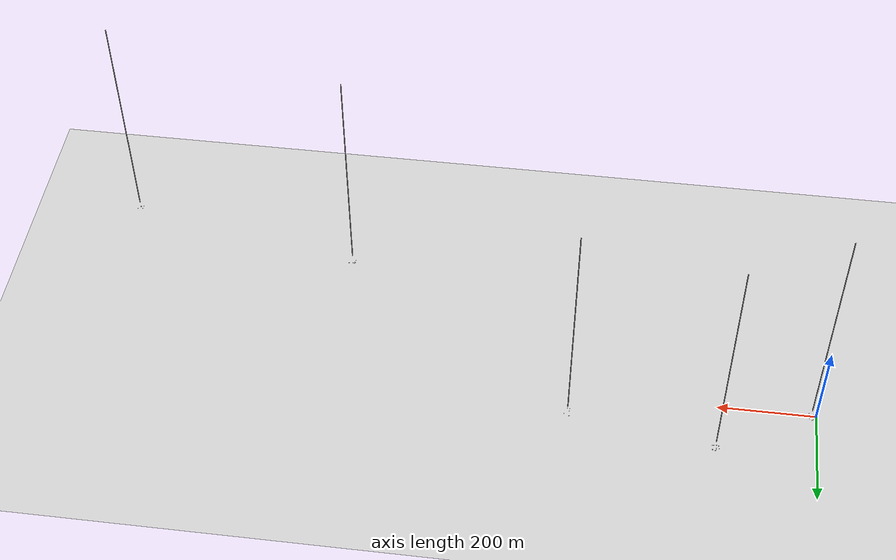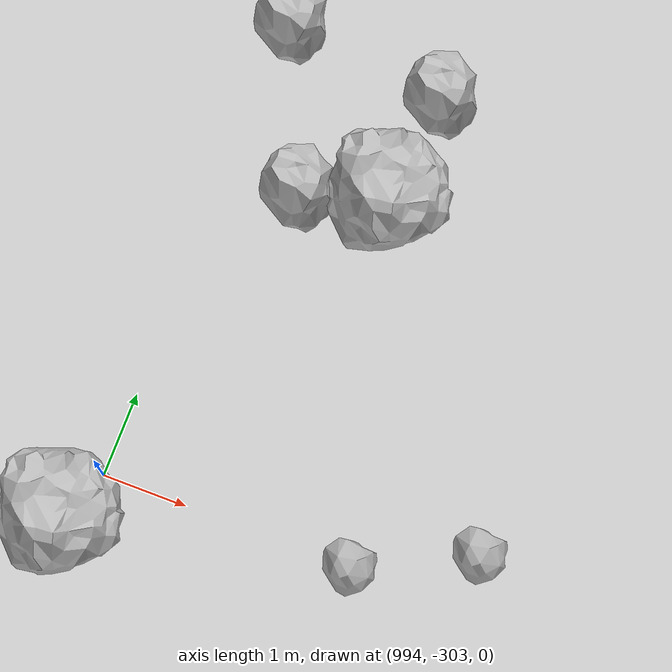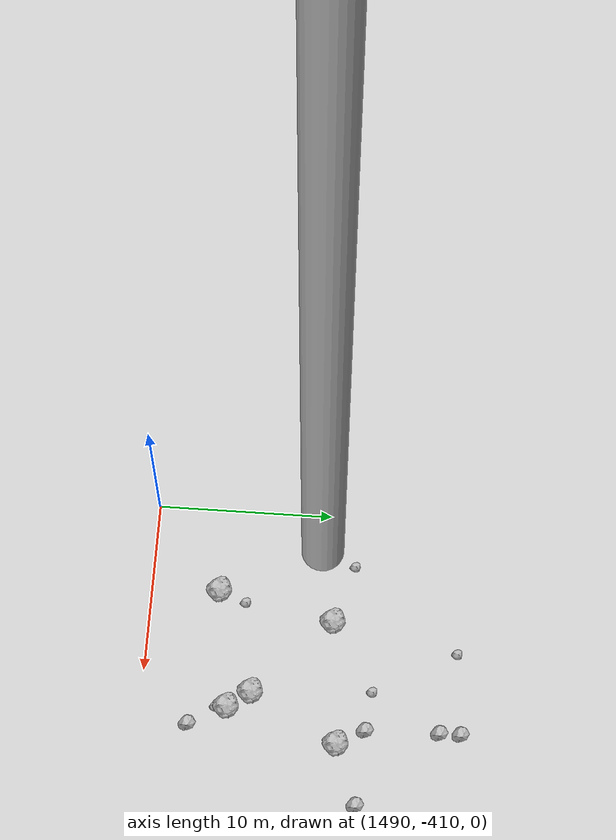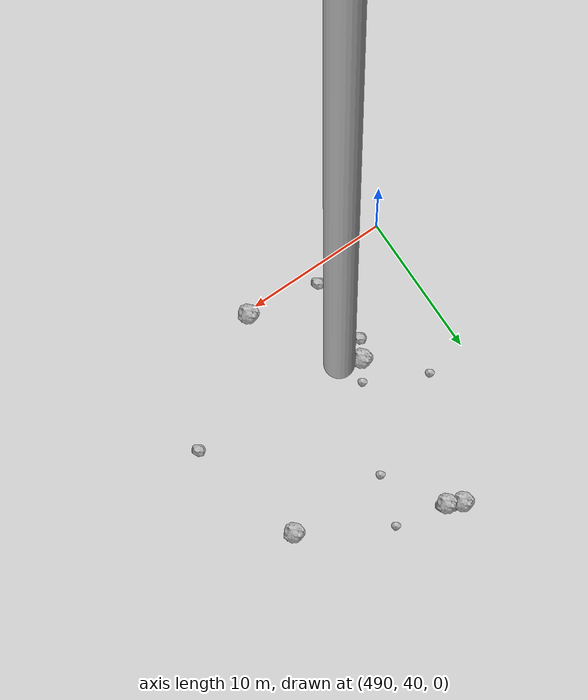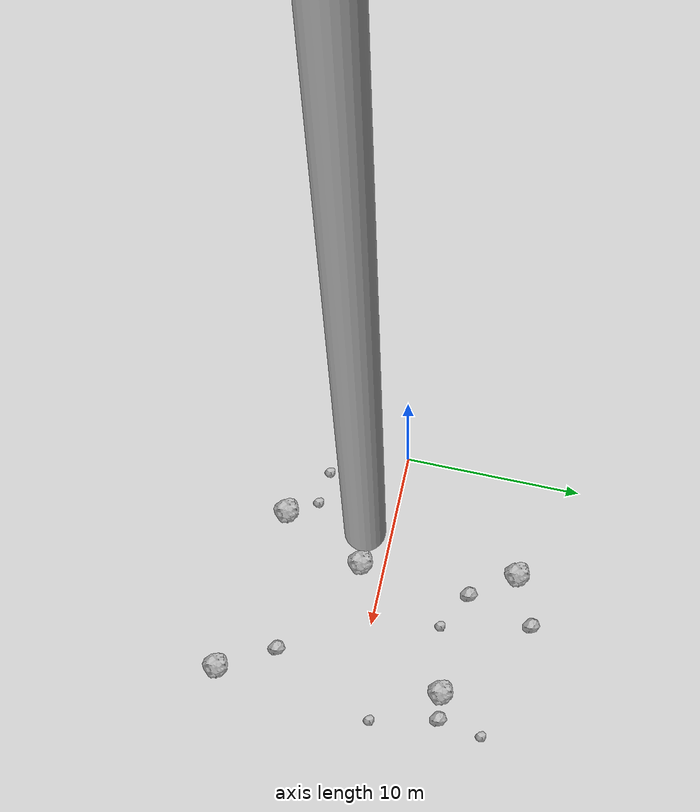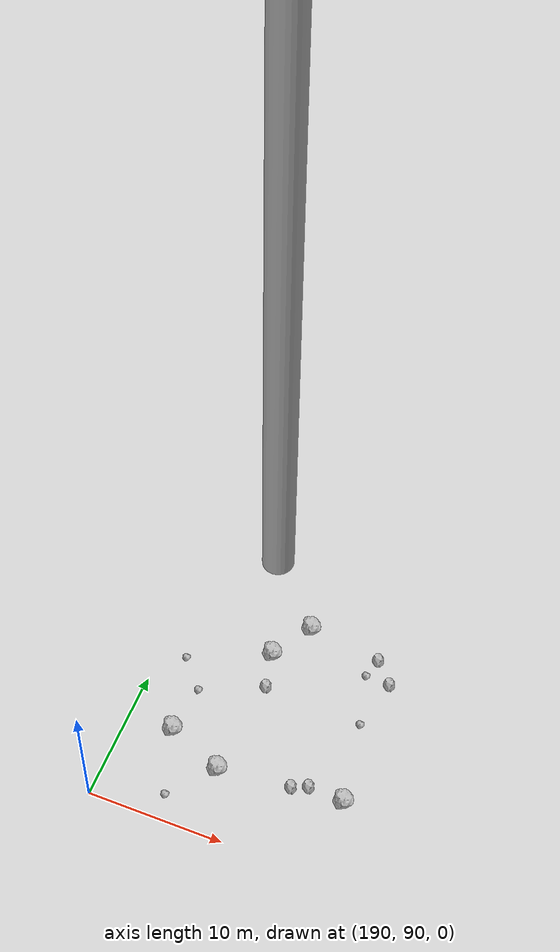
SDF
<?xml version="1.0" ?>
<sdf version="1.6">
  <world name="default">

    <include>
      <uri>model://custom_ground</uri>
    </include>

    <include>
      <uri>model://sun</uri>
    </include>

    <spherical_coordinates>
      <surface_model>EARTH_WGS84</surface_model>
      <latitude_deg>38.161479</latitude_deg>
      <longitude_deg>-122.454630</longitude_deg>
      <elevation>488.0</elevation>
      <heading_deg>90</heading_deg>
    </spherical_coordinates>

    <model name="rock1_0_0">
      <include>
        <uri>model://rock1</uri>
        <pose>14.268658401103568 -8.05244208059345 0.5 0 0 0</pose>
      </include>
    </model>
    <model name="rock1_0_1">
      <include>
        <uri>model://rock1</uri>
        <pose>13.145670562018372 4.631143264597677 0.5 0 0 0</pose>
      </include>
    </model>
    <model name="rock1_0_2">
      <include>
        <uri>model://rock1</uri>
        <pose>5.588244560397017 7.502242841563703 0.5 0 0 0</pose>
      </include>
    </model>
    <model name="rock1_0_3">
      <include>
        <uri>model://rock1</uri>
        <pose>4.632453958096676 -6.154039830444187 0.5 0 0 0</pose>
      </include>
    </model>
    <model name="rock1_0_4">
      <include>
        <uri>model://rock1</uri>
        <pose>6.738055242732162 -1.3622576790118845 0.5 0 0 0</pose>
      </include>
    </model>
    <model name="rock2_0_0">
      <include>
        <uri>model://rock2</uri>
        <pose>7.218095011370236 5.06467056744572 0.3 0 0 0</pose>
      </include>
    </model>
    <model name="rock2_0_1">
      <include>
        <uri>model://rock2</uri>
        <pose>12.84196889078743 4.793536601767194 0.3 0 0 0</pose>
      </include>
    </model>
    <model name="rock2_0_2">
      <include>
        <uri>model://rock2</uri>
        <pose>14.578902233676471 4.819384331202803 0.3 0 0 0</pose>
      </include>
    </model>
    <model name="rock2_0_3">
      <include>
        <uri>model://rock2</uri>
        <pose>8.273340291700283 8.877458873999686 0.3 0 0 0</pose>
      </include>
    </model>
    <model name="rock2_0_4">
      <include>
        <uri>model://rock2</uri>
        <pose>12.49628436231782 -4.92503912897792 0.3 0 0 0</pose>
      </include>
    </model>
    <model name="rock3_0_0">
      <include>
        <uri>model://rock3</uri>
        <pose>9.326132564346954 3.8170865580328055 0.2 0 0 0</pose>
      </include>
    </model>
    <model name="rock3_0_1">
      <include>
        <uri>model://rock3</uri>
        <pose>15.034414925119876 7.323070878949853 0.2 0 0 0</pose>
      </include>
    </model>
    <model name="rock3_0_2">
      <include>
        <uri>model://rock3</uri>
        <pose>1.7540757227802173 -4.245137870542218 0.2 0 0 0</pose>
      </include>
    </model>
    <model name="rock3_0_3">
      <include>
        <uri>model://rock3</uri>
        <pose>3.660513580736471 -4.491158326242188 0.2 0 0 0</pose>
      </include>
    </model>
    <model name="rock3_0_4">
      <include>
        <uri>model://rock3</uri>
        <pose>15.43166781376603 1.0089852199751483 0.2 0 0 0</pose>
      </include>
    </model>
    <model name="rock1_1_0">
      <include>
        <uri>model://rock1</uri>
        <pose>197.5816527643921 95.0239168826244 0.5 0 0 0</pose>
      </include>
    </model>
    <model name="rock1_1_1">
      <include>
        <uri>model://rock1</uri>
        <pose>206.69946759780495 95.92786054555343 0.5 0 0 0</pose>
      </include>
    </model>
    <model name="rock1_1_2">
      <include>
        <uri>model://rock1</uri>
        <pose>199.55589720205404 108.45131785014709 0.5 0 0 0</pose>
      </include>
    </model>
    <model name="rock1_1_3">
      <include>
        <uri>model://rock1</uri>
        <pose>193.3817016827467 96.78352575571874 0.5 0 0 0</pose>
      </include>
    </model>
    <model name="rock1_1_4">
      <include>
        <uri>model://rock1</uri>
        <pose>197.66852310961644 105.30701904332898 0.5 0 0 0</pose>
      </include>
    </model>
    <model name="rock2_1_0">
      <include>
        <uri>model://rock2</uri>
        <pose>198.26540803004613 102.53229289679726 0.3 0 0 0</pose>
      </include>
    </model>
    <model name="rock2_1_1">
      <include>
        <uri>model://rock2</uri>
        <pose>205.11056976412252 107.68554986558719 0.3 0 0 0</pose>
      </include>
    </model>
    <model name="rock2_1_2">
      <include>
        <uri>model://rock2</uri>
        <pose>204.04607099831952 96.09904560394382 0.3 0 0 0</pose>
      </include>
    </model>
    <model name="rock2_1_3">
      <include>
        <uri>model://rock2</uri>
        <pose>206.54485771567778 106.02155048440525 0.3 0 0 0</pose>
      </include>
    </model>
    <model name="rock2_1_4">
      <include>
        <uri>model://rock2</uri>
        <pose>202.90813480265112 95.6108191994657 0.3 0 0 0</pose>
      </include>
    </model>
    <model name="rock3_1_0">
      <include>
        <uri>model://rock3</uri>
        <pose>204.70055559350988 106.10494240070147 0.2 0 0 0</pose>
      </include>
    </model>
    <model name="rock3_1_1">
      <include>
        <uri>model://rock3</uri>
        <pose>193.7860551136742 100.432539357126 0.2 0 0 0</pose>
      </include>
    </model>
    <model name="rock3_1_2">
      <include>
        <uri>model://rock3</uri>
        <pose>205.67192943712192 102.11403137248125 0.2 0 0 0</pose>
      </include>
    </model>
    <model name="rock3_1_3">
      <include>
        <uri>model://rock3</uri>
        <pose>194.95375651484812 91.82275585038089 0.2 0 0 0</pose>
      </include>
    </model>
    <model name="rock3_1_4">
      <include>
        <uri>model://rock3</uri>
        <pose>191.88915555318863 102.65745242269969 0.2 0 0 0</pose>
      </include>
    </model>
    <model name="rock1_2_0">
      <include>
        <uri>model://rock1</uri>
        <pose>496.1183728919656 47.092101524985495 0.5 0 0 0</pose>
      </include>
    </model>
    <model name="rock1_2_1">
      <include>
        <uri>model://rock1</uri>
        <pose>497.02597133177187 58.52364483963314 0.5 0 0 0</pose>
      </include>
    </model>
    <model name="rock1_2_2">
      <include>
        <uri>model://rock1</uri>
        <pose>500.7281590051683 40.233112107205415 0.5 0 0 0</pose>
      </include>
    </model>
    <model name="rock1_2_3">
      <include>
        <uri>model://rock1</uri>
        <pose>506.6085311279401 54.39731663400037 0.5 0 0 0</pose>
      </include>
    </model>
    <model name="rock1_2_4">
      <include>
        <uri>model://rock1</uri>
        <pose>496.04567812301985 59.030944190984286 0.5 0 0 0</pose>
      </include>
    </model>
    <model name="rock2_2_0">
      <include>
        <uri>model://rock2</uri>
        <pose>496.83188731277585 58.777572415277874 0.3 0 0 0</pose>
      </include>
    </model>
    <model name="rock2_2_1">
      <include>
        <uri>model://rock2</uri>
        <pose>497.34978712773557 58.47370886660998 0.3 0 0 0</pose>
      </include>
    </model>
    <model name="rock2_2_2">
      <include>
        <uri>model://rock2</uri>
        <pose>495.3980744453585 45.833230815194376 0.3 0 0 0</pose>
      </include>
    </model>
    <model name="rock2_2_3">
      <include>
        <uri>model://rock2</uri>
        <pose>508.71263089048256 46.12890872367063 0.3 0 0 0</pose>
      </include>
    </model>
    <model name="rock2_2_4">
      <include>
        <uri>model://rock2</uri>
        <pose>495.5880843258729 41.08872223889075 0.3 0 0 0</pose>
      </include>
    </model>
    <model name="rock3_2_0">
      <include>
        <uri>model://rock3</uri>
        <pose>496.94345321795 48.400756049205015 0.2 0 0 0</pose>
      </include>
    </model>
    <model name="rock3_2_1">
      <include>
        <uri>model://rock3</uri>
        <pose>499.53261012226557 54.33837557763647 0.2 0 0 0</pose>
      </include>
    </model>
    <model name="rock3_2_2">
      <include>
        <uri>model://rock3</uri>
        <pose>492.8246474588366 50.42930269931496 0.2 0 0 0</pose>
      </include>
    </model>
    <model name="rock3_2_3">
      <include>
        <uri>model://rock3</uri>
        <pose>495.37507902036003 43.11022876599689 0.2 0 0 0</pose>
      </include>
    </model>
    <model name="rock3_2_4">
      <include>
        <uri>model://rock3</uri>
        <pose>500.64507672940493 57.797399104649614 0.2 0 0 0</pose>
      </include>
    </model>
    <model name="rock1_3_0">
      <include>
        <uri>model://rock1</uri>
        <pose>993.7848518321083 -303.6161932107398 0.5 0 0 0</pose>
      </include>
    </model>
    <model name="rock1_3_1">
      <include>
        <uri>model://rock1</uri>
        <pose>996.0555750487348 -294.9707367459548 0.5 0 0 0</pose>
      </include>
    </model>
    <model name="rock1_3_2">
      <include>
        <uri>model://rock1</uri>
        <pose>999.6118433950372 -296.675383051541 0.5 0 0 0</pose>
      </include>
    </model>
    <model name="rock1_3_3">
      <include>
        <uri>model://rock1</uri>
        <pose>995.9092250424106 -298.8481436685183 0.5 0 0 0</pose>
      </include>
    </model>
    <model name="rock1_3_4">
      <include>
        <uri>model://rock1</uri>
        <pose>1007.3499373136839 -295.26941145320814 0.5 0 0 0</pose>
      </include>
    </model>
    <model name="rock2_3_0">
      <include>
        <uri>model://rock2</uri>
        <pose>996.4189105083866 -294.20780779705774 0.3 0 0 0</pose>
      </include>
    </model>
    <model name="rock2_3_1">
      <include>
        <uri>model://rock2</uri>
        <pose>994.8670262896854 -299.0845468150904 0.3 0 0 0</pose>
      </include>
    </model>
    <model name="rock2_3_2">
      <include>
        <uri>model://rock2</uri>
        <pose>1004.234815021728 -306.47627933288936 0.3 0 0 0</pose>
      </include>
    </model>
    <model name="rock2_3_3">
      <include>
        <uri>model://rock2</uri>
        <pose>996.032255628622 -297.43554075957275 0.3 0 0 0</pose>
      </include>
    </model>
    <model name="rock2_3_4">
      <include>
        <uri>model://rock2</uri>
        <pose>994.0594543980661 -297.19719696274393 0.3 0 0 0</pose>
      </include>
    </model>
    <model name="rock3_3_0">
      <include>
        <uri>model://rock3</uri>
        <pose>996.3984460786539 -291.56506158793815 0.2 0 0 0</pose>
      </include>
    </model>
    <model name="rock3_3_1">
      <include>
        <uri>model://rock3</uri>
        <pose>996.9786114524924 -303.0146473689888 0.2 0 0 0</pose>
      </include>
    </model>
    <model name="rock3_3_2">
      <include>
        <uri>model://rock3</uri>
        <pose>998.3033443266454 -302.3709785416529 0.2 0 0 0</pose>
      </include>
    </model>
    <model name="rock3_3_3">
      <include>
        <uri>model://rock3</uri>
        <pose>996.2389037303019 -294.7460503666427 0.2 0 0 0</pose>
      </include>
    </model>
    <model name="rock3_3_4">
      <include>
        <uri>model://rock3</uri>
        <pose>1004.3129617181422 -300.1294761365109 0.2 0 0 0</pose>
      </include>
    </model>
    <model name="rock1_4_0">
      <include>
        <uri>model://rock1</uri>
        <pose>1496.5787036915704 -399.5713861311955 0.5 0 0 0</pose>
      </include>
    </model>
    <model name="rock1_4_1">
      <include>
        <uri>model://rock1</uri>
        <pose>1501.9604278358408 -405.1997094709079 0.5 0 0 0</pose>
      </include>
    </model>
    <model name="rock1_4_2">
      <include>
        <uri>model://rock1</uri>
        <pose>1495.1182090015266 -406.1436638501079 0.5 0 0 0</pose>
      </include>
    </model>
    <model name="rock1_4_3">
      <include>
        <uri>model://rock1</uri>
        <pose>1501.0067445940692 -403.9169226891019 0.5 0 0 0</pose>
      </include>
    </model>
    <model name="rock1_4_4">
      <include>
        <uri>model://rock1</uri>
        <pose>1503.7104304016732 -398.9689668753848 0.5 0 0 0</pose>
      </include>
    </model>
    <model name="rock2_4_0">
      <include>
        <uri>model://rock2</uri>
        <pose>1502.6434506995986 -392.0510624449491 0.3 0 0 0</pose>
      </include>
    </model>
    <model name="rock2_4_1">
      <include>
        <uri>model://rock2</uri>
        <pose>1507.0321098415181 -397.66461571147426 0.3 0 0 0</pose>
      </include>
    </model>
    <model name="rock2_4_2">
      <include>
        <uri>model://rock2</uri>
        <pose>1502.6463166962642 -393.23589781860375 0.3 0 0 0</pose>
      </include>
    </model>
    <model name="rock2_4_3">
      <include>
        <uri>model://rock2</uri>
        <pose>1502.991754570108 -407.26703224827105 0.3 0 0 0</pose>
      </include>
    </model>
    <model name="rock2_4_4">
      <include>
        <uri>model://rock2</uri>
        <pose>1502.7557099289752 -397.36930164557526 0.3 0 0 0</pose>
      </include>
    </model>
    <model name="rock3_4_0">
      <include>
        <uri>model://rock3</uri>
        <pose>1497.9460931016852 -392.45673091719385 0.2 0 0 0</pose>
      </include>
    </model>
    <model name="rock3_4_1">
      <include>
        <uri>model://rock3</uri>
        <pose>1495.6515831046686 -404.603328782227 0.2 0 0 0</pose>
      </include>
    </model>
    <model name="rock3_4_2">
      <include>
        <uri>model://rock3</uri>
        <pose>1493.0677730707503 -398.49767560125986 0.2 0 0 0</pose>
      </include>
    </model>
    <model name="rock3_4_3">
      <include>
        <uri>model://rock3</uri>
        <pose>1500.4905163072506 -397.12426616876024 0.2 0 0 0</pose>
      </include>
    </model>
    <model name="rock3_4_4">
      <include>
        <uri>model://rock3</uri>
        <pose>1501.898577251328 -405.82721036820806 0.2 0 0 0</pose>
      </include>
    </model>

    <model name="cylinder_1">
      <static>true</static>
      <link name="link">
        <visual name="visual">
          <geometry>
            <cylinder>
              <radius>1</radius>
              <length>500</length>
            </cylinder>
          </geometry>
        </visual>
      </link>
      <pose>10 0 270 0 0 0</pose>
    </model>

    <model name="cylinder_2">
      <static>true</static>
      <link name="link">
        <visual name="visual">
          <geometry>
            <cylinder>
              <radius>1</radius>
              <length>500</length>
            </cylinder>
          </geometry>
        </visual>
      </link>
      <pose>200 100 270 0 0 0</pose>
    </model>

    <model name="cylinder_3">
      <static>true</static>
      <link name="link">
        <visual name="visual">
          <geometry>
            <cylinder>
              <radius>1</radius>
              <length>500</length>
            </cylinder>
          </geometry>
        </visual>
      </link>
      <pose>500 50 270 0 0 0</pose>
    </model>

    <model name="cylinder_4">
      <static>true</static>
      <link name="link">
        <visual name="visual">
          <geometry>
            <cylinder>
              <radius>1</radius>
              <length>500</length>
            </cylinder>
          </geometry>
        </visual>
      </link>
      <pose>1000 -300 270 0 0 0</pose>
    </model>

    <model name="cylinder_5">
      <static>true</static>
      <link name="link">
        <visual name="visual">
          <geometry>
            <cylinder>
              <radius>1</radius>
              <length>500</length>
            </cylinder>
          </geometry>
        </visual>
      </link>
      <pose>1500 -400 270 0 0 0</pose>
    </model>

  </world>
</sdf>

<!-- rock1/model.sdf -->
<sdf version="1.6">
  <model name="rock1">
    <static>true</static> <!-- Set to true if the model should not move -->
    <pose>0 0 0 0 0 0</pose>

    <!--z offset is 0.5 for full scale-->

    <link name="link">
      <collision name="rock1_collision">
        <geometry>
          <mesh>
            <uri>model://meshes/rock1.dae</uri>
          </mesh>
        </geometry>
      </collision>
      <visual name="rock1_visual">
        <geometry>
          <mesh>
            <uri>model://meshes/rock1.dae</uri>
          </mesh>
        </geometry>
        <material>
          <script>
            <uri>model://materials/scripts/sand_pebbles.material</uri>
            <name>custom_ground/Image</name>
          </script>
        </material>
      </visual>
    </link>
  </model>
</sdf>

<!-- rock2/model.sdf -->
<sdf version="1.6">
  <model name="rock2">
    <static>true</static> <!-- Set to true if the model should not move -->
    <pose>0 0 0 0 0 0</pose>

    <!--z offset is 0.3 for full scale-->

    <link name="link">
      <collision name="rock2_collision">
        <geometry>
          <mesh>
            <uri>model://meshes/rock2.dae</uri>
          </mesh>
        </geometry>
      </collision>
      <visual name="rock2_visual">
        <geometry>
          <mesh>
            <uri>model://meshes/rock2.dae</uri>
          </mesh>
        </geometry>
        <material>
          <script>
            <uri>model://materials/scripts/sand_pebbles.material</uri>
            <name>custom_ground/Image</name>
          </script>
        </material>
      </visual>
    </link>
  </model>
</sdf>

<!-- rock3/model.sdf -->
<sdf version="1.6">
  <model name="rock3">
    <static>true</static> <!-- Set to true if the model should not move -->
    <pose>0 0 0 0 0 0</pose>

    <!--z offset is 0.2 for full scale-->

    <link name="link">
      <collision name="rock3_collision">
        <geometry>
          <mesh>
            <uri>model://meshes/rock3.dae</uri>
          </mesh>
        </geometry>
      </collision>
      <visual name="rock3_visual">
        <geometry>
          <mesh>
            <uri>model://meshes/rock3.dae</uri>
          </mesh>
        </geometry>
        <material>
          <script>
            <uri>model://materials/scripts/sand_pebbles.material</uri>
            <name>custom_ground/Image</name>
          </script>
        </material>
      </visual>
    </link>
  </model>
</sdf>

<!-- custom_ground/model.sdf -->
<sdf version="1.6">
  <model name="custom_ground">
    <static>true</static> <!-- Ground is static and immovable -->
    <link name="ground_link">
      <pose>240 0 0 0 0 0</pose> <!-- Position and orientation relative to the world -->
      <!-- Visual Representation -->
      <visual name="ground_visual">
        <geometry>
          <plane>
            <normal>0 0 1</normal> <!-- Upward facing plane -->
            <size>500 500</size> <!-- Size of the plane -->
          </plane>
        </geometry>
        <material>
          <script>
            <uri>model://materials/scripts/sand_pebbles.material</uri>
            <name>custom_ground/Image</name>
          </script>
        </material>
      </visual>

      <!-- Collision Representation -->
      <collision name="ground_collision">
        <geometry>
          <plane>
            <normal>0 0 1</normal>
            <size>100 100</size>
          </plane>
        </geometry>
      </collision>

    </link>
  </model>
</sdf>
